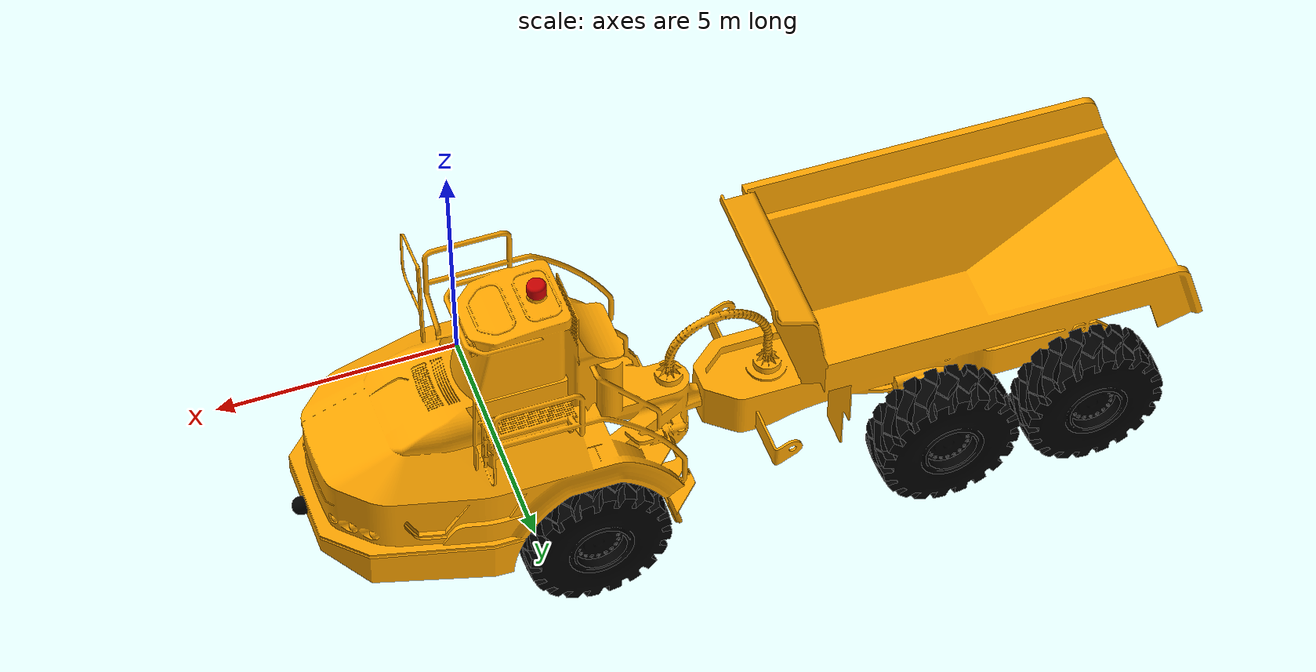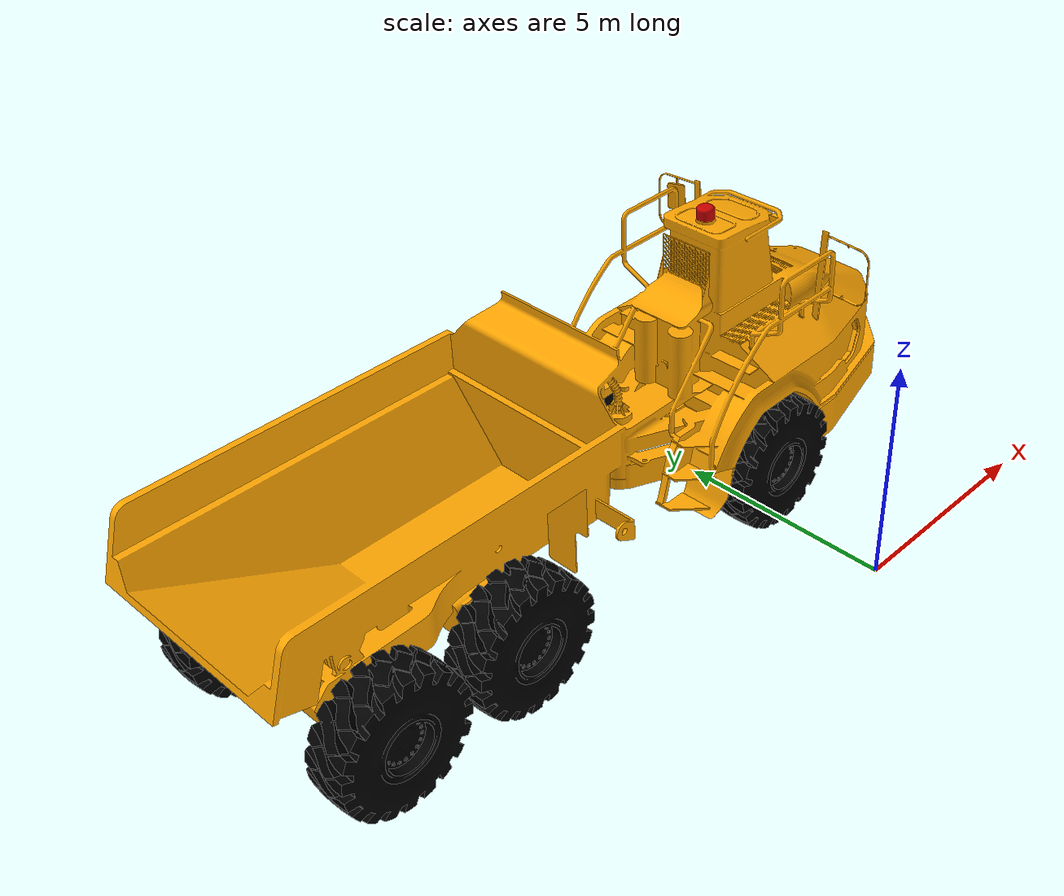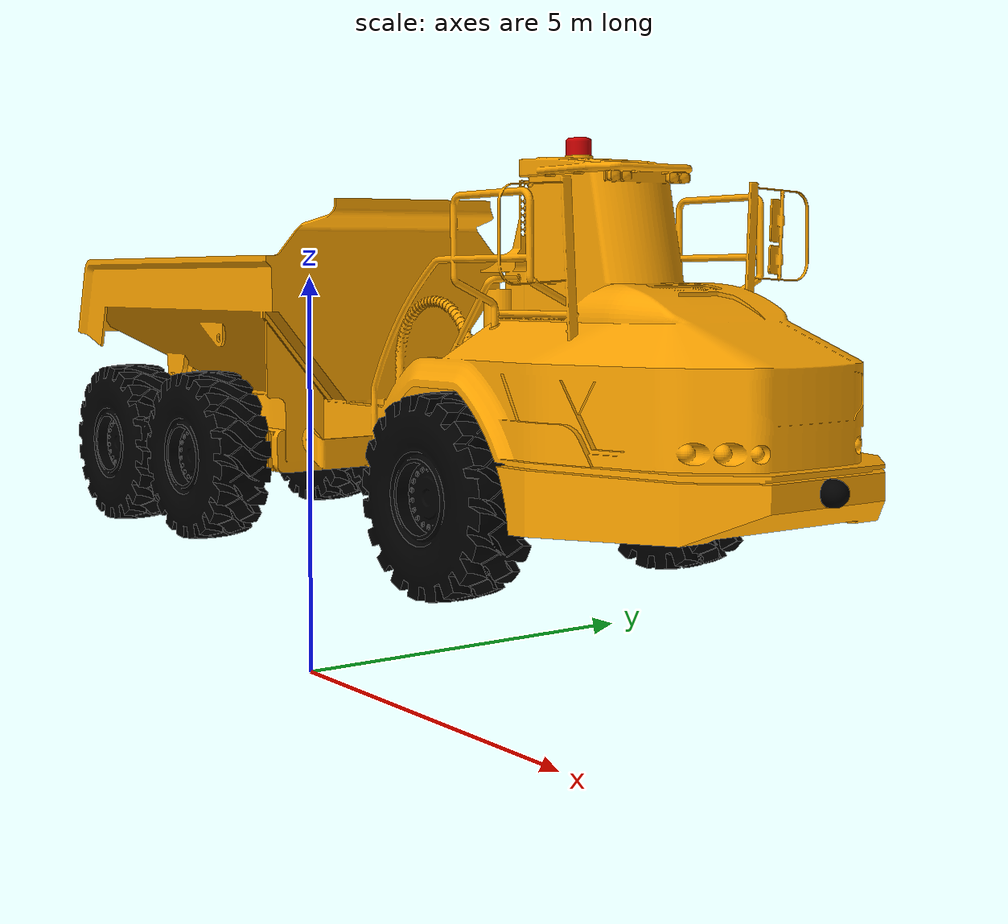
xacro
<?xml version="1.0" ?>
<robot name="dump_truck" xmlns:xacro="http://www.ros.org/wiki/xacro">

<xacro:property name="scale_factor" value="5.0"/>
<xacro:property name="s1" value="${scale_factor}"/>
<xacro:property name="s3" value="${scale_factor * scale_factor * scale_factor}"/>
<xacro:property name="s5" value="${scale_factor * scale_factor * scale_factor * scale_factor * scale_factor}"/>
<xacro:property name="m_scale" value="${0.001 * scale_factor}"/>

<xacro:include filename="$(find dump_truck_description)/urdf/materials.xacro" />
<xacro:include filename="$(find dump_truck_description)/urdf/dump_truck.ros2control" />
<xacro:include filename="$(find dump_truck_description)/urdf/dump_truck.gazebo" />

<link name="base_footprint"/>

<joint name="base_joint" type="fixed">
  <parent link="base_footprint"/>
  <child link="base_link"/>
  <origin xyz="0 0 0" rpy="0 0 0"/>
</joint>

<link name="base_link">
  <inertial>
    <origin xyz="${-0.037216870542629524 * s1} ${0.923650063509177 * s1} ${0.6089941137475473 * s1}" rpy="0 0 0"/>
    <mass value="${3682.561304973613 * s3}"/>
    <inertia ixx="${270.862434 * s5}" iyy="${2272.68259 * s5}" izz="${2297.240174 * s5}" ixy="${-17.023489 * s5}" iyz="${-1.422168 * s5}" ixz="${-160.660818 * s5}"/>
  </inertial>
  <visual>
    <origin xyz="0 0 0" rpy="0 0 0"/>
    <geometry>
      <mesh filename="file://$(find dump_truck_description)/meshes/base_link.stl" scale="${m_scale} ${m_scale} ${m_scale}"/>
    </geometry>
    <material name="yellow"/>
  </visual>
  <collision>
    <origin xyz="0 0 0" rpy="0 0 0"/>
    <geometry>
      <mesh filename="file://$(find dump_truck_description)/meshes/base_link.stl" scale="${m_scale} ${m_scale} ${m_scale}"/>
    </geometry>
  </collision>
</link>

<link name="camera_1">
  <inertial>
    <origin xyz="${0.02005126476127672 * s1} ${0.00017213478379707325 * s1} ${0.0003003465910116909 * s1}" rpy="0 0 0"/>
    <mass value="${1.1580630469448432 * s3}"/>
    <inertia ixx="${0.000623 * s5}" iyy="${0.000489 * s5}" izz="${0.000489 * s5}" ixy="${1e-06 * s5}" iyz="0.0" ixz="${2e-06 * s5}"/>
  </inertial>
  <visual>
    <origin xyz="${-0.873841 * s1} ${-0.931693 * s1} ${-0.485279 * s1}" rpy="0 0 0"/>
    <geometry>
      <mesh filename="file://$(find dump_truck_description)/meshes/camera_1.stl" scale="${m_scale} ${m_scale} ${m_scale}"/>
    </geometry>
    <material name="black"/>
  </visual>
  <collision>
    <origin xyz="${-0.873841 * s1} ${-0.931693 * s1} ${-0.485279 * s1}" rpy="0 0 0"/>
    <geometry>
      <mesh filename="file://$(find dump_truck_description)/meshes/camera_1.stl" scale="${m_scale} ${m_scale} ${m_scale}"/>
    </geometry>
  </collision>
</link>

<link name="lidar_1">
  <inertial>
    <origin xyz="${-0.0003624172352394983 * s1} ${-3.920104766896859e-05 * s1} ${0.02423043463481611 * s1}" rpy="0 0 0"/>
    <mass value="${1.6315042031764755 * s3}"/>
    <inertia ixx="${0.000867 * s5}" iyy="${0.000867 * s5}" izz="${0.001088 * s5}" ixy="0.0" iyz="-0.0" ixz="${-3e-06 * s5}"/>
  </inertial>
  <visual>
    <origin xyz="${0.068968 * s1} ${-0.922284 * s1} ${-1.336248 * s1}" rpy="0 0 0"/>
    <geometry>
      <mesh filename="file://$(find dump_truck_description)/meshes/lidar_1.stl" scale="${m_scale} ${m_scale} ${m_scale}"/>
    </geometry>
    <material name="red"/>
  </visual>
  <collision>
    <origin xyz="${0.068968 * s1} ${-0.922284 * s1} ${-1.336248 * s1}" rpy="0 0 0"/>
    <geometry>
      <mesh filename="file://$(find dump_truck_description)/meshes/lidar_1.stl" scale="${m_scale} ${m_scale} ${m_scale}"/>
    </geometry>
  </collision>
</link>

<link name="tyre_2">
  <inertial>
    <origin xyz="${-0.0012750992862658461 * s1} ${0.14789695829908256 * s1} ${0.00022227831942106535 * s1}" rpy="0 0 0"/>
    <mass value="${359.7412690363687 * s3}"/>
    <inertia ixx="${8.219518 * s5}" iyy="${14.057652 * s5}" izz="${8.219096 * s5}" ixy="${-0.050352 * s5}" iyz="${0.008766 * s5}" ixz="${-7.7e-05 * s5}"/>
  </inertial>
  <visual>
    <origin xyz="${0.127216 * s1} ${-1.193205 * s1} ${-0.395711 * s1}" rpy="0 0 0"/>
    <geometry>
      <mesh filename="file://$(find dump_truck_description)/meshes/tyre_2.stl" scale="${m_scale} ${m_scale} ${m_scale}"/>
    </geometry>
    <material name="black"/>
  </visual>
  <collision>
    <origin xyz="${0.127216 * s1} ${-1.193205 * s1} ${-0.395711 * s1}" rpy="0 0 0"/>
    <geometry>
      <mesh filename="file://$(find dump_truck_description)/meshes/tyre_2.stl" scale="${m_scale} ${m_scale} ${m_scale}"/>
    </geometry>
  </collision>
</link>

<link name="tyre_5">
  <inertial>
    <origin xyz="${0.0012755085230084229 * s1} ${-0.1478972497552904 * s1} ${-0.00022156795798849993 * s1}" rpy="0 0 0"/>
    <mass value="${359.7412690363687 * s3}"/>
    <inertia ixx="${8.219518 * s5}" iyy="${14.057652 * s5}" izz="${8.219096 * s5}" ixy="${-0.05035 * s5}" iyz="${0.008766 * s5}" ixz="${-7.5e-05 * s5}"/>
  </inertial>
  <visual>
    <origin xyz="${0.122559 * s1} ${-0.653225 * s1} ${-0.3949 * s1}" rpy="0 0 0"/>
    <geometry>
      <mesh filename="file://$(find dump_truck_description)/meshes/tyre_5.stl" scale="${m_scale} ${m_scale} ${m_scale}"/>
    </geometry>
    <material name="black"/>
  </visual>
  <collision>
    <origin xyz="${0.122559 * s1} ${-0.653225 * s1} ${-0.3949 * s1}" rpy="0 0 0"/>
    <geometry>
      <mesh filename="file://$(find dump_truck_description)/meshes/tyre_5.stl" scale="${m_scale} ${m_scale} ${m_scale}"/>
    </geometry>
  </collision>
</link>

<link name="tyre_1">
  <inertial>
    <origin xyz="${-0.0012752135814764198 * s1} ${0.14789783155963732 * s1} ${0.00022248066668784094 * s1}" rpy="0 0 0"/>
    <mass value="${359.7412690363687 * s3}"/>
    <inertia ixx="${8.219518 * s5}" iyy="${14.057652 * s5}" izz="${8.219096 * s5}" ixy="${-0.050352 * s5}" iyz="${0.008766 * s5}" ixz="${-7.7e-05 * s5}"/>
  </inertial>
  <visual>
    <origin xyz="${1.547004 * s1} ${-1.180992 * s1} ${-0.374437 * s1}" rpy="0 0 0"/>
    <geometry>
      <mesh filename="file://$(find dump_truck_description)/meshes/tyre_1.stl" scale="${m_scale} ${m_scale} ${m_scale}"/>
    </geometry>
    <material name="black"/>
  </visual>
  <collision>
    <origin xyz="${1.547004 * s1} ${-1.180992 * s1} ${-0.374437 * s1}" rpy="0 0 0"/>
    <geometry>
      <mesh filename="file://$(find dump_truck_description)/meshes/tyre_1.stl" scale="${m_scale} ${m_scale} ${m_scale}"/>
    </geometry>
  </collision>
</link>

<link name="tyre_4">
  <inertial>
    <origin xyz="${0.001275394227803206 * s1} ${-0.1478973764947354 * s1} ${-0.00022236561072314087 * s1}" rpy="0 0 0"/>
    <mass value="${359.7412690363687 * s3}"/>
    <inertia ixx="${8.219518 * s5}" iyy="${14.057652 * s5}" izz="${8.219096 * s5}" ixy="${-0.05035 * s5}" iyz="${0.008766 * s5}" ixz="${-7.5e-05 * s5}"/>
  </inertial>
  <visual>
    <origin xyz="${1.542347 * s1} ${-0.641013 * s1} ${-0.373627 * s1}" rpy="0 0 0"/>
    <geometry>
      <mesh filename="file://$(find dump_truck_description)/meshes/tyre_4.stl" scale="${m_scale} ${m_scale} ${m_scale}"/>
    </geometry>
    <material name="black"/>
  </visual>
  <collision>
    <origin xyz="${1.542347 * s1} ${-0.641013 * s1} ${-0.373627 * s1}" rpy="0 0 0"/>
    <geometry>
      <mesh filename="file://$(find dump_truck_description)/meshes/tyre_4.stl" scale="${m_scale} ${m_scale} ${m_scale}"/>
    </geometry>
  </collision>
</link>

<link name="tyre_3">
  <inertial>
    <origin xyz="${-0.0012756844104315768 * s1} ${0.14789777800775838 * s1} ${0.00022155208102447865 * s1}" rpy="0 0 0"/>
    <mass value="${359.7412690363687 * s3}"/>
    <inertia ixx="${8.219518 * s5}" iyy="${14.057652 * s5}" izz="${8.219096 * s5}" ixy="${-0.050352 * s5}" iyz="${0.008766 * s5}" ixz="${-7.7e-05 * s5}"/>
  </inertial>
  <visual>
    <origin xyz="${2.146914 * s1} ${-1.175832 * s1} ${-0.365449 * s1}" rpy="0 0 0"/>
    <geometry>
      <mesh filename="file://$(find dump_truck_description)/meshes/tyre_3.stl" scale="${m_scale} ${m_scale} ${m_scale}"/>
    </geometry>
    <material name="black"/>
  </visual>
  <collision>
    <origin xyz="${2.146914 * s1} ${-1.175832 * s1} ${-0.365449 * s1}" rpy="0 0 0"/>
    <geometry>
      <mesh filename="file://$(find dump_truck_description)/meshes/tyre_3.stl" scale="${m_scale} ${m_scale} ${m_scale}"/>
    </geometry>
  </collision>
</link>

<link name="tyre_6">
  <inertial>
    <origin xyz="${0.001275923398844192 * s1} ${-0.14789743004661327 * s1} ${-0.00022229419638614134 * s1}" rpy="0 0 0"/>
    <mass value="${359.7412690363687 * s3}"/>
    <inertia ixx="${8.219518 * s5}" iyy="${14.057652 * s5}" izz="${8.219096 * s5}" ixy="${-0.05035 * s5}" iyz="${0.008766 * s5}" ixz="${-7.5e-05 * s5}"/>
  </inertial>
  <visual>
    <origin xyz="${2.142258 * s1} ${-0.635853 * s1} ${-0.364638 * s1}" rpy="0 0 0"/>
    <geometry>
      <mesh filename="file://$(find dump_truck_description)/meshes/tyre_6.stl" scale="${m_scale} ${m_scale} ${m_scale}"/>
    </geometry>
    <material name="black"/>
  </visual>
  <collision>
    <origin xyz="${2.142258 * s1} ${-0.635853 * s1} ${-0.364638 * s1}" rpy="0 0 0"/>
    <geometry>
      <mesh filename="file://$(find dump_truck_description)/meshes/tyre_6.stl" scale="${m_scale} ${m_scale} ${m_scale}"/>
    </geometry>
  </collision>
</link>

<joint name="cam" type="fixed">
  <origin xyz="${0.873841 * s1} ${0.931693 * s1} ${0.485279 * s1}" rpy="0 0 0"/>
  <parent link="base_link"/>
  <child link="camera_1"/>
</joint>

<joint name="lidar" type="fixed">
  <origin xyz="${-0.068968 * s1} ${0.922284 * s1} ${1.336248 * s1}" rpy="0 0 0"/>
  <parent link="base_link"/>
  <child link="lidar_1"/>
</joint>

<joint name="l1" type="continuous">
  <origin xyz="${-0.127216 * s1} ${1.193205 * s1} ${0.395711 * s1}" rpy="0 0 0"/>
  <parent link="base_link"/>
  <child link="tyre_2"/>
  <axis xyz="-0.008624 0.999962 0.001501"/>
</joint>

<joint name="r1" type="continuous">
  <origin xyz="${-0.122559 * s1} ${0.653225 * s1} ${0.3949 * s1}" rpy="0 0 0"/>
  <parent link="base_link"/>
  <child link="tyre_5"/>
  <axis xyz="-0.008624 0.999962 0.001501"/>
</joint>

<joint name="l2" type="continuous">
  <origin xyz="${-1.547004 * s1} ${1.180992 * s1} ${0.374437 * s1}" rpy="0 0 0"/>
  <parent link="base_link"/>
  <child link="tyre_1"/>
  <axis xyz="-0.008624 0.999962 0.001501"/>
</joint>

<joint name="r2" type="continuous">
  <origin xyz="${-1.542347 * s1} ${0.641013 * s1} ${0.373627 * s1}" rpy="0 0 0"/>
  <parent link="base_link"/>
  <child link="tyre_4"/>
  <axis xyz="-0.008624 0.999962 0.001501"/>
</joint>

<joint name="l3" type="continuous">
  <origin xyz="${-2.146914 * s1} ${1.175832 * s1} ${0.365449 * s1}" rpy="0 0 0"/>
  <parent link="base_link"/>
  <child link="tyre_3"/>
  <axis xyz="-0.008624 0.999962 0.001501"/>
</joint>

<joint name="r3" type="continuous">
  <origin xyz="${-2.142258 * s1} ${0.635853 * s1} ${0.364638 * s1}" rpy="0 0 0"/>
  <parent link="base_link"/>
  <child link="tyre_6"/>
  <axis xyz="-0.008624 0.999962 0.001501"/>
</joint>

</robot>

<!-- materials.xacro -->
<robot name="dump_truck" xmlns:xacro="http://www.ros.org/wiki/xacro" >

<material name="silver">
  <color rgba="0.700 0.700 0.700 1.000"/>
</material>

<material name="red">
  <color rgba="0.8 0 0 1.000"/>
</material>

<material name="black">
  <color rgba="0 0 0 1"/>
</material>

<material name="yellow">
  <color rgba="1.0 0.65 0.0 1.0"/>
</material>

</robot>

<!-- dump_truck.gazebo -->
<robot name="dump_truck" xmlns:xacro="http://www.ros.org/wiki/xacro" >

<xacro:property name="body_color" value="Gazebo/Yellow" />

<gazebo reference="base_link">
  <material>${body_color}</material>
  <mu1>0.2</mu1>
  <mu2>0.2</mu2>
  <self_collide>true</self_collide>
  <gravity>true</gravity>
</gazebo>

<gazebo reference="camera_1">
  <material>${body_color}</material>
  <mu1>0.2</mu1>
  <mu2>0.2</mu2>
  <self_collide>true</self_collide>
</gazebo>

<gazebo reference="lidar_1">
  <material>${body_color}</material>
  <mu1>0.2</mu1>
  <mu2>0.2</mu2>
  <self_collide>true</self_collide>
</gazebo>

<gazebo reference="tyre_2">
  <material>${body_color}</material>
  <mu1>0.2</mu1>
  <mu2>0.2</mu2>
  <self_collide>true</self_collide>
</gazebo>

<gazebo reference="tyre_5">
  <material>${body_color}</material>
  <mu1>0.2</mu1>
  <mu2>0.2</mu2>
  <self_collide>true</self_collide>
</gazebo>

<gazebo reference="tyre_1">
  <material>${body_color}</material>
  <mu1>0.2</mu1>
  <mu2>0.2</mu2>
  <self_collide>true</self_collide>
</gazebo>

<gazebo reference="tyre_4">
  <material>${body_color}</material>
  <mu1>0.2</mu1>
  <mu2>0.2</mu2>
  <self_collide>true</self_collide>
</gazebo>

<gazebo reference="tyre_3">
  <material>${body_color}</material>
  <mu1>0.2</mu1>
  <mu2>0.2</mu2>
  <self_collide>true</self_collide>
</gazebo>

<gazebo reference="tyre_6">
  <material>${body_color}</material>
  <mu1>0.2</mu1>
  <mu2>0.2</mu2>
  <self_collide>true</self_collide>
</gazebo>

<gazebo>
		<plugin filename="gz-sim-diff-drive-system"
			      name="gz::sim::systems::DiffDrive">
			  <left_joint>l1</left_joint>
			  <left_joint>l2</left_joint>
			  <left_joint>l3</left_joint>
    		<right_joint>r1</right_joint>
    		<right_joint>r2</right_joint>
    		<right_joint>r3</right_joint>
    		<wheel_separation>0.058*2</wheel_separation>
    		<wheel_radius>0.02</wheel_radius>
			<topic>cmd_vel</topic>
    </plugin>
    <plugin filename="libgz-sim-joint-state-publisher-system.so"
              name="gz::sim::systems::JointStatePublisher">
      <topic>/joint_states</topic>
    </plugin>
</gazebo>

<gazebo>
    <plugin
      filename="gz-sim-odometry-publisher-system"
      name="gz::sim::systems::OdometryPublisher">
      <odom_frame>odom</odom_frame>
      <robot_base_frame>base_link</robot_base_frame>
      <odom_topic>/odom</odom_topic>
      <tf_topic>/tf</tf_topic>

    </plugin>
</gazebo>

<gazebo reference="lidar_1">
        <sensor name="gpu_lidar" type="gpu_lidar">
            <pose relative_to='lidar_1'> 0 0 0.02 0 0 0 </pose>
            <topic>/scan</topic>
            <always_on>true</always_on>
            <visualize>true</visualize>
            <update_rate>10</update_rate>
            <ray>
              <scan>
                <horizontal>
                  <samples>90</samples>
                  <min_angle>-3.14</min_angle>
                  <max_angle>3.14</max_angle>
                </horizontal>
                <vertical>
                    <samples>16</samples>
                    <min_angle>-0.393</min_angle>
                    <max_angle>0.393</max_angle>
                </vertical>
              </scan>
              <range>
                <min>0.3</min>
                <max>50</max>
              </range>
            </ray>
            <always_on>true</always_on>
            <visualize>true</visualize>
        </sensor>
</gazebo>

 <gazebo reference="camera_1">
    <sensor type="camera" name="camera1">
      <update_rate>30.0</update_rate>
      <camera name="head">
        <horizontal_fov>1.3962634</horizontal_fov>
        <image>
          <width>800</width>
          <height>800</height>
          <format>R8G8B8</format>
        </image>
        <clip>
          <near>0.02</near>
          <far>300</far>
        </clip>
        <noise>
          <type>gaussian</type>
          <!-- Noise is sampled independently per pixel on each frame.
               That pixel's noise value is added to each of its color
               channels, which at that point lie in the range [0,1]. -->
          <mean>0.0</mean>
          <stddev>0.007</stddev>
        </noise>
      </camera>
      <plugin name="camera_controller" filename="libgazebo_ros_camera.so">
        <alwaysOn>true</alwaysOn>
        <updateRate>0.0</updateRate>
        <cameraName>rrbot/camera1</cameraName>
        <imageTopicName>image_raw</imageTopicName>
        <cameraInfoTopicName>camera_info</cameraInfoTopicName>
        <frameName>camera_link</frameName>
        <hackBaseline>0.07</hackBaseline>
        <distortionK1>0.0</distortionK1>
        <distortionK2>0.0</distortionK2>
        <distortionK3>0.0</distortionK3>
        <distortionT1>0.0</distortionT1>
        <distortionT2>0.0</distortionT2>
      </plugin>
    </sensor>
  </gazebo>

  <gazebo reference="camera_1">
    <sensor name="thermal_camera_8bit" type="thermal_camera">
      <camera>
        <horizontal_fov>1.047</horizontal_fov>
        <image>
          <width>320</width>
          <height>240</height>
          <format>L16</format>
        </image>
        <clip>
          <near>0.1</near>
          <far>100</far>
        </clip>
      </camera>
      <always_on>1</always_on>
      <update_rate>30</update_rate>
      <visualize>true</visualize>
      <topic>thermal_camera_8bit/image</topic>
      <plugin filename="ignition-gazebo-thermal-sensor-system" name="gz::sim::systems::ThermalSensor">
        <min_temp>280.0</min_temp>
        <max_temp>360.0</max_temp>
        <resolution>3.0</resolution>
      </plugin>
    </sensor>
</gazebo>

</robot>
